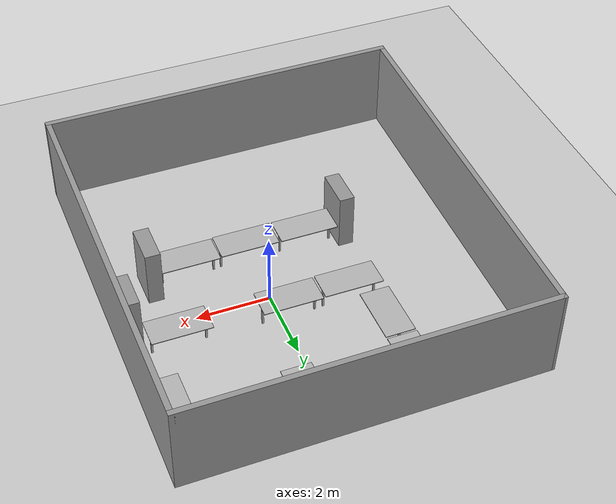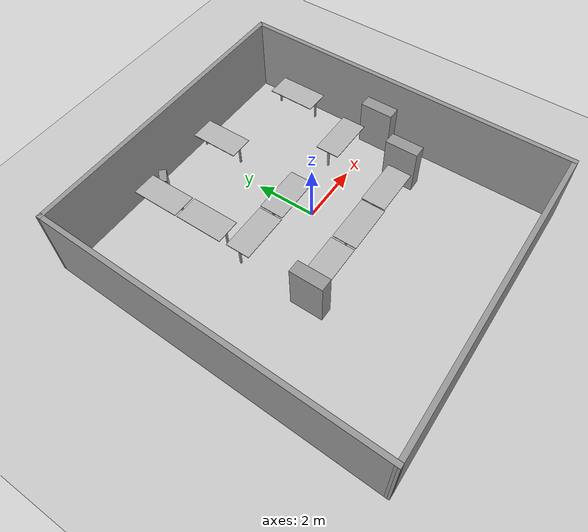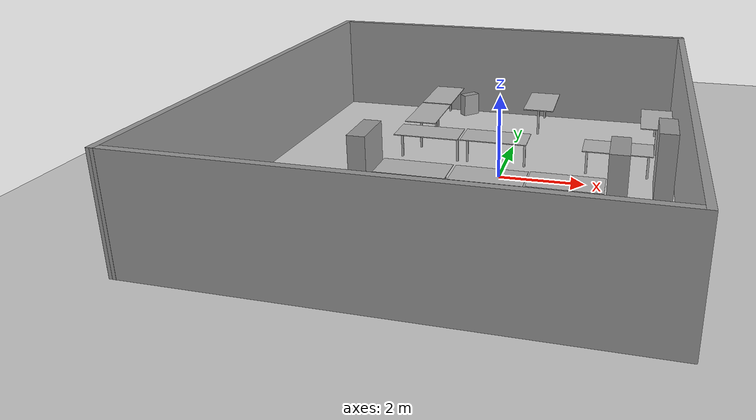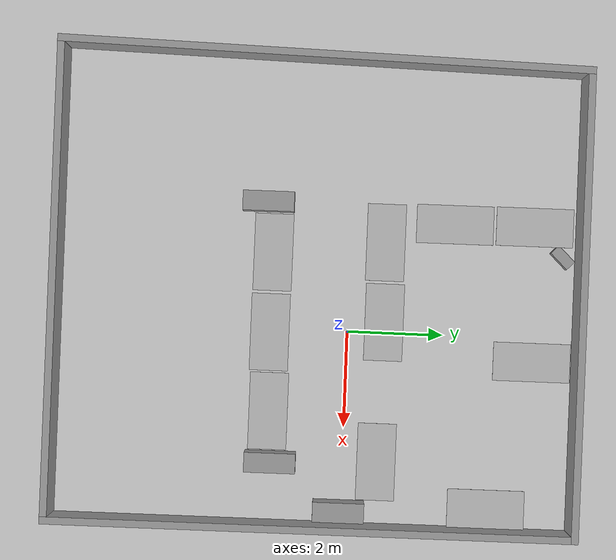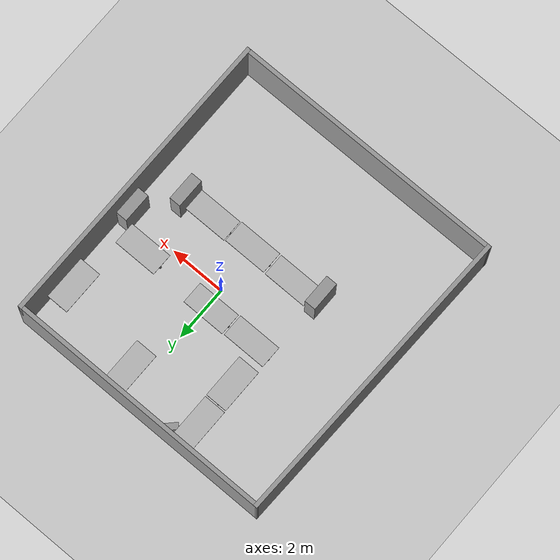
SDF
<sdf version="1.6">
 <world name="default">
  <light name="sun" type="directional">
   <pose>0 0 10 0 -0 0</pose>
   <diffuse>0.45 0.45 0.45 1</diffuse>
   <specular>0.2 0.2 0.2 1</specular>
   <attenuation>
    <range>1000</range>
    <constant>0.9</constant>
    <linear>0.01</linear>
    <quadratic>0.001</quadratic>
   </attenuation>
   <direction>0.1 0.1 -0.9</direction>
  </light>
  <model name="ground_plane">
   <static>1</static>
   <link name="link">
    <collision name="collision">
     <geometry><plane><normal>0 0 1</normal><size>100 100</size></plane></geometry>
     <surface><friction><ode><mu>100</mu><mu2>50</mu2></ode></friction></surface>
    </collision>
    <visual name="visual">
     <cast_shadows>0</cast_shadows>
     <geometry><plane><normal>0 0 1</normal><size>100 100</size></plane></geometry>
     <material>
      <script><uri>file://media/materials/scripts/gazebo.material</uri><name>Gazebo/Grey</name></script>
     </material>
    </visual>
   </link>
  </model>
  <gravity>0 0 -9.8</gravity>
  <magnetic_field>6e-06 2.3e-05 -4.2e-05</magnetic_field>
  <atmosphere type="adiabatic"/>
  <physics name="default_physics" default="0" type="ode">
   <max_step_size>0.001</max_step_size>
   <real_time_factor>1</real_time_factor>
   <real_time_update_rate>1000</real_time_update_rate>
  </physics>
  <scene><ambient>0.4 0.4 0.4 1</ambient><background>0.7 0.7 0.7 1</background><shadows>1</shadows></scene>
  <spherical_coordinates>
   <surface_model>EARTH_WGS84</surface_model>
   <latitude_deg>0</latitude_deg>
   <longitude_deg>0</longitude_deg>
   <elevation>0</elevation>
   <heading_deg>0</heading_deg>
  </spherical_coordinates>
  <model name="small_room">
   <pose>-0.86468 -0.641226 0 0 -0 0</pose>
   <link name="Wall_10">
    <collision name="Wall_10_Collision">
     <geometry><box><size>11.0029 0.15 2.5</size></box></geometry>
     <pose>0 0 1.25 0 -0 0</pose>
    </collision>
    <visual name="Wall_10_Visual">
     <pose>0 0 1.25 0 -0 0</pose>
     <geometry><box><size>11.0029 0.15 2.5</size></box></geometry>
     <material>
      <script><uri>file://media/materials/scripts/gazebo.material</uri><name>Gazebo/Grey</name></script>
      <ambient>1 1 1 1</ambient>
     </material>
     <meta><layer>0</layer></meta>
    </visual>
    <pose>-4.79915 0 0 0 0 -1.59383</pose>
   </link>
   <link name="Wall_6">
    <collision name="Wall_6_Collision">
     <geometry><box><size>9.75 0.15 2.5</size></box></geometry>
     <pose>0 0 1.25 0 -0 0</pose>
    </collision>
    <visual name="Wall_6_Visual">
     <pose>0 0 1.25 0 -0 0</pose>
     <geometry><box><size>9.75 0.15 2.5</size></box></geometry>
     <material>
      <script><uri>file://media/materials/scripts/gazebo.material</uri><name>Gazebo/Grey</name></script>
      <ambient>1 1 1 1</ambient>
     </material>
     <meta><layer>0</layer></meta>
    </visual>
    <pose>0.125853 5.425 0 0 -0 0</pose>
   </link>
   <link name="Wall_7">
    <collision name="Wall_7_Collision">
     <geometry><box><size>11 0.15 2.5</size></box></geometry>
     <pose>0 0 1.25 0 -0 0</pose>
    </collision>
    <visual name="Wall_7_Visual">
     <pose>0 0 1.25 0 -0 0</pose>
     <geometry><box><size>11 0.15 2.5</size></box></geometry>
     <material>
      <script><uri>file://media/materials/scripts/gazebo.material</uri><name>Gazebo/Grey</name></script>
      <ambient>1 1 1 1</ambient>
     </material>
     <meta><layer>0</layer></meta>
    </visual>
    <pose>4.92585 0 0 0 0 -1.5708</pose>
   </link>
   <link name="Wall_8">
    <collision name="Wall_8_Collision">
     <geometry><box><size>10 0.15 2.5</size></box></geometry>
     <pose>0 0 1.25 0 -0 0</pose>
    </collision>
    <visual name="Wall_8_Visual">
     <pose>0 0 1.25 0 -0 0</pose>
     <geometry><box><size>10 0.15 2.5</size></box></geometry>
     <material>
      <script><uri>file://media/materials/scripts/gazebo.material</uri><name>Gazebo/Grey</name></script>
      <ambient>1 1 1 1</ambient>
     </material>
     <meta><layer>0</layer></meta>
    </visual>
    <pose>0.000853 -5.425 0 0 -0 3.14159</pose>
   </link>
   <static>1</static>
  </model>
  <model name="table">
   <static>1</static>
   <link name="surface">
    <pose>0 0 0.7 0 -0 0</pose>
    <inertial>
     <mass>1</mass>
     <inertia><ixx>0.083</ixx><ixy>0</ixy><ixz>0</ixz><iyy>0.083</iyy><iyz>0</iyz><izz>0.083</izz></inertia>
    </inertial>
    <collision name="collision"><geometry><box><size>0.8 1.6 0.02</size></box></geometry></collision>
    <visual name="visual"><geometry><box><size>0.8 1.6 0.02</size></box></geometry></visual>
   </link>
   <link name="leg1">
    <pose>0 0.71 0.35 0 -0 0</pose>
    <inertial>
     <mass>1</mass>
     <inertia><ixx>0.083</ixx><ixy>0</ixy><ixz>0</ixz><iyy>0.083</iyy><iyz>0</iyz><izz>0.083</izz></inertia>
    </inertial>
    <collision name="collision"><geometry><box><size>0.05 0.05 0.7</size></box></geometry></collision>
    <visual name="visual"><geometry><box><size>0.05 0.05 0.7</size></box></geometry></visual>
   </link>
   <link name="leg2">
    <pose>0 -0.71 0.35 0 -0 0</pose>
    <inertial>
     <mass>1</mass>
     <inertia><ixx>0.083</ixx><ixy>0</ixy><ixz>0</ixz><iyy>0.083</iyy><iyz>0</iyz><izz>0.083</izz></inertia>
    </inertial>
    <collision name="collision"><geometry><box><size>0.05 0.05 0.7</size></box></geometry></collision>
    <visual name="visual"><geometry><box><size>0.05 0.05 0.7</size></box></geometry></visual>
   </link>
   <pose>3.5728 3.01037 0 0 -0 0</pose>
  </model>
  <model name="table_clone">
   <static>1</static>
   <link name="surface">
    <pose>0 0 0.7 0 -0 0</pose>
    <inertial>
     <mass>1</mass>
     <inertia><ixx>0.083</ixx><ixy>0</ixy><ixz>0</ixz><iyy>0.083</iyy><iyz>0</iyz><izz>0.083</izz></inertia>
    </inertial>
    <collision name="collision"><geometry><box><size>0.8 1.6 0.02</size></box></geometry></collision>
    <visual name="visual"><geometry><box><size>0.8 1.6 0.02</size></box></geometry></visual>
   </link>
   <link name="leg1">
    <pose>0 0.71 0.35 0 -0 0</pose>
    <inertial>
     <mass>1</mass>
     <inertia><ixx>0.083</ixx><ixy>0</ixy><ixz>0</ixz><iyy>0.083</iyy><iyz>0</iyz><izz>0.083</izz></inertia>
    </inertial>
    <collision name="collision"><geometry><box><size>0.05 0.05 0.7</size></box></geometry></collision>
    <visual name="visual"><geometry><box><size>0.05 0.05 0.7</size></box></geometry></visual>
   </link>
   <link name="leg2">
    <pose>0 -0.71 0.35 0 -0 0</pose>
    <inertial>
     <mass>1</mass>
     <inertia><ixx>0.083</ixx><ixy>0</ixy><ixz>0</ixz><iyy>0.083</iyy><iyz>0</iyz><izz>0.083</izz></inertia>
    </inertial>
    <collision name="collision"><geometry><box><size>0.05 0.05 0.7</size></box></geometry></collision>
    <visual name="visual"><geometry><box><size>0.05 0.05 0.7</size></box></geometry></visual>
   </link>
   <pose>0.487267 3.85123 0 0 -0 0</pose>
  </model>
  <model name="table_clone_clone">
   <static>1</static>
   <link name="surface">
    <pose>0 0 0.7 0 -0 0</pose>
    <inertial>
     <mass>1</mass>
     <inertia><ixx>0.083</ixx><ixy>0</ixy><ixz>0</ixz><iyy>0.083</iyy><iyz>0</iyz><izz>0.083</izz></inertia>
    </inertial>
    <collision name="collision"><geometry><box><size>0.8 1.6 0.02</size></box></geometry></collision>
    <visual name="visual"><geometry><box><size>0.8 1.6 0.02</size></box></geometry></visual>
   </link>
   <link name="leg1">
    <pose>0 0.71 0.35 0 -0 0</pose>
    <inertial>
     <mass>1</mass>
     <inertia><ixx>0.083</ixx><ixy>0</ixy><ixz>0</ixz><iyy>0.083</iyy><iyz>0</iyz><izz>0.083</izz></inertia>
    </inertial>
    <collision name="collision"><geometry><box><size>0.05 0.05 0.7</size></box></geometry></collision>
    <visual name="visual"><geometry><box><size>0.05 0.05 0.7</size></box></geometry></visual>
   </link>
   <link name="leg2">
    <pose>0 -0.71 0.35 0 -0 0</pose>
    <inertial>
     <mass>1</mass>
     <inertia><ixx>0.083</ixx><ixy>0</ixy><ixz>0</ixz><iyy>0.083</iyy><iyz>0</iyz><izz>0.083</izz></inertia>
    </inertial>
    <collision name="collision"><geometry><box><size>0.05 0.05 0.7</size></box></geometry></collision>
    <visual name="visual"><geometry><box><size>0.05 0.05 0.7</size></box></geometry></visual>
   </link>
   <pose>-2.32045 3.81657 0 0 -0 0</pose>
  </model>
  <model name="table_clone_clone_clone">
   <static>1</static>
   <link name="surface">
    <pose>0 0 0.7 0 -0 0</pose>
    <inertial>
     <mass>1</mass>
     <inertia><ixx>0.083</ixx><ixy>0</ixy><ixz>0</ixz><iyy>0.083</iyy><iyz>0</iyz><izz>0.083</izz></inertia>
    </inertial>
    <collision name="collision"><geometry><box><size>0.8 1.6 0.02</size></box></geometry></collision>
    <visual name="visual"><geometry><box><size>0.8 1.6 0.02</size></box></geometry></visual>
   </link>
   <link name="leg1">
    <pose>0 0.71 0.35 0 -0 0</pose>
    <inertial>
     <mass>1</mass>
     <inertia><ixx>0.083</ixx><ixy>0</ixy><ixz>0</ixz><iyy>0.083</iyy><iyz>0</iyz><izz>0.083</izz></inertia>
    </inertial>
    <collision name="collision"><geometry><box><size>0.05 0.05 0.7</size></box></geometry></collision>
    <visual name="visual"><geometry><box><size>0.05 0.05 0.7</size></box></geometry></visual>
   </link>
   <link name="leg2">
    <pose>0 -0.71 0.35 0 -0 0</pose>
    <inertial>
     <mass>1</mass>
     <inertia><ixx>0.083</ixx><ixy>0</ixy><ixz>0</ixz><iyy>0.083</iyy><iyz>0</iyz><izz>0.083</izz></inertia>
    </inertial>
    <collision name="collision"><geometry><box><size>0.05 0.05 0.7</size></box></geometry></collision>
    <visual name="visual"><geometry><box><size>0.05 0.05 0.7</size></box></geometry></visual>
   </link>
   <pose>-2.31352 2.15773 0 0 -0 0</pose>
  </model>
  <model name="table_clone_clone_clone_clone">
   <static>1</static>
   <link name="surface">
    <pose>0 0 0.7 0 -0 0</pose>
    <inertial>
     <mass>1</mass>
     <inertia><ixx>0.083</ixx><ixy>0</ixy><ixz>0</ixz><iyy>0.083</iyy><iyz>0</iyz><izz>0.083</izz></inertia>
    </inertial>
    <collision name="collision"><geometry><box><size>0.8 1.6 0.02</size></box></geometry></collision>
    <visual name="visual"><geometry><box><size>0.8 1.6 0.02</size></box></geometry></visual>
   </link>
   <link name="leg1">
    <pose>0 0.71 0.35 0 -0 0</pose>
    <inertial>
     <mass>1</mass>
     <inertia><ixx>0.083</ixx><ixy>0</ixy><ixz>0</ixz><iyy>0.083</iyy><iyz>0</iyz><izz>0.083</izz></inertia>
    </inertial>
    <collision name="collision"><geometry><box><size>0.05 0.05 0.7</size></box></geometry></collision>
    <visual name="visual"><geometry><box><size>0.05 0.05 0.7</size></box></geometry></visual>
   </link>
   <link name="leg2">
    <pose>0 -0.71 0.35 0 -0 0</pose>
    <inertial>
     <mass>1</mass>
     <inertia><ixx>0.083</ixx><ixy>0</ixy><ixz>0</ixz><iyy>0.083</iyy><iyz>0</iyz><izz>0.083</izz></inertia>
    </inertial>
    <collision name="collision"><geometry><box><size>0.05 0.05 0.7</size></box></geometry></collision>
    <visual name="visual"><geometry><box><size>0.05 0.05 0.7</size></box></geometry></visual>
   </link>
   <pose>-1.88666 0.733523 0 0 0 -1.57247</pose>
  </model>
  <model name="table_clone_clone_clone_clone_clone">
   <static>1</static>
   <link name="surface">
    <pose>0 0 0.7 0 -0 0</pose>
    <inertial>
     <mass>1</mass>
     <inertia><ixx>0.083</ixx><ixy>0</ixy><ixz>0</ixz><iyy>0.083</iyy><iyz>0</iyz><izz>0.083</izz></inertia>
    </inertial>
    <collision name="collision"><geometry><box><size>0.8 1.6 0.02</size></box></geometry></collision>
    <visual name="visual"><geometry><box><size>0.8 1.6 0.02</size></box></geometry></visual>
   </link>
   <link name="leg1">
    <pose>0 0.71 0.35 0 -0 0</pose>
    <inertial>
     <mass>1</mass>
     <inertia><ixx>0.083</ixx><ixy>0</ixy><ixz>0</ixz><iyy>0.083</iyy><iyz>0</iyz><izz>0.083</izz></inertia>
    </inertial>
    <collision name="collision"><geometry><box><size>0.05 0.05 0.7</size></box></geometry></collision>
    <visual name="visual"><geometry><box><size>0.05 0.05 0.7</size></box></geometry></visual>
   </link>
   <link name="leg2">
    <pose>0 -0.71 0.35 0 -0 0</pose>
    <inertial>
     <mass>1</mass>
     <inertia><ixx>0.083</ixx><ixy>0</ixy><ixz>0</ixz><iyy>0.083</iyy><iyz>0</iyz><izz>0.083</izz></inertia>
    </inertial>
    <collision name="collision"><geometry><box><size>0.05 0.05 0.7</size></box></geometry></collision>
    <visual name="visual"><geometry><box><size>0.05 0.05 0.7</size></box></geometry></visual>
   </link>
   <pose>-0.22807 0.756859 0 0 0 -1.57247</pose>
  </model>
  <model name="table_clone_clone_clone_clone_clone_clone">
   <static>1</static>
   <link name="surface">
    <pose>0 0 0.7 0 -0 0</pose>
    <inertial>
     <mass>1</mass>
     <inertia><ixx>0.083</ixx><ixy>0</ixy><ixz>0</ixz><iyy>0.083</iyy><iyz>0</iyz><izz>0.083</izz></inertia>
    </inertial>
    <collision name="collision"><geometry><box><size>0.8 1.6 0.02</size></box></geometry></collision>
    <visual name="visual"><geometry><box><size>0.8 1.6 0.02</size></box></geometry></visual>
   </link>
   <link name="leg1">
    <pose>0 0.71 0.35 0 -0 0</pose>
    <inertial>
     <mass>1</mass>
     <inertia><ixx>0.083</ixx><ixy>0</ixy><ixz>0</ixz><iyy>0.083</iyy><iyz>0</iyz><izz>0.083</izz></inertia>
    </inertial>
    <collision name="collision"><geometry><box><size>0.05 0.05 0.7</size></box></geometry></collision>
    <visual name="visual"><geometry><box><size>0.05 0.05 0.7</size></box></geometry></visual>
   </link>
   <link name="leg2">
    <pose>0 -0.71 0.35 0 -0 0</pose>
    <inertial>
     <mass>1</mass>
     <inertia><ixx>0.083</ixx><ixy>0</ixy><ixz>0</ixz><iyy>0.083</iyy><iyz>0</iyz><izz>0.083</izz></inertia>
    </inertial>
    <collision name="collision"><geometry><box><size>0.05 0.05 0.7</size></box></geometry></collision>
    <visual name="visual"><geometry><box><size>0.05 0.05 0.7</size></box></geometry></visual>
   </link>
   <pose>2.67799 0.698879 0 0 0 -1.57247</pose>
  </model>
  <model name="unit_box">
   <pose>-1.71425 4.42855 0.300569 0 0 -0.777128</pose>
   <link name="link">
    <inertial>
     <mass>1</mass>
     <inertia>
      <ixx>0.166667</ixx>
      <ixy>0</ixy>
      <ixz>0</ixz>
      <iyy>0.166667</iyy>
      <iyz>0</iyz>
      <izz>0.166667</izz>
     </inertia>
    </inertial>
    <collision name="collision">
     <geometry><box><size>0.235203 0.476271 0.601139</size></box></geometry>
    </collision>
    <visual name="visual">
     <geometry><box><size>0.235203 0.476271 0.601139</size></box></geometry>
     <material>
      <script><name>Gazebo/Grey</name><uri>file://media/materials/scripts/gazebo.material</uri></script>
     </material>
    </visual>
   </link>
  </model>
  <model name="unit_box_0">
   <pose>3.72655 -0.053382 0.79696 0 -0 0.000214</pose>
   <link name="link">
    <inertial>
     <mass>1</mass>
     <inertia>
      <ixx>0.166667</ixx>
      <ixy>0</ixy>
      <ixz>0</ixz>
      <iyy>0.166667</iyy>
      <iyz>0</iyz>
      <izz>0.166667</izz>
     </inertia>
    </inertial>
    <collision name="collision"><geometry><box><size>0.40926 1.06262 1.59392</size></box></geometry></collision>
    <visual name="visual">
     <geometry><box><size>0.40926 1.06262 1.59392</size></box></geometry>
     <material>
      <script><name>Gazebo/Grey</name><uri>file://media/materials/scripts/gazebo.material</uri></script>
     </material>
    </visual>
   </link>
  </model>
  <model name="unit_box_0_clone">
   <pose>2.7535 -1.50449 0.796956 -6e-06 2e-06 0.000502</pose>
   <link name="link">
    <inertial>
     <mass>1</mass>
     <inertia>
      <ixx>0.166667</ixx>
      <ixy>0</ixy>
      <ixz>0</ixz>
      <iyy>0.166667</iyy>
      <iyz>0</iyz>
      <izz>0.166667</izz>
     </inertia>
    </inertial>
    <collision name="collision"><geometry><box><size>0.40926 1.06262 1.59392</size></box></geometry></collision>
    <visual name="visual">
     <geometry><box><size>0.40926 1.06262 1.59392</size></box></geometry>
     <material>
      <script><name>Gazebo/Grey</name><uri>file://media/materials/scripts/gazebo.material</uri></script>
     </material>
    </visual>
   </link>
  </model>
  <model name="table_clone_clone_clone_clone_clone_clone_0">
   <static>1</static>
   <link name="surface">
    <pose>0 0 0.7 0 -0 0</pose>
    <inertial>
     <mass>1</mass>
     <inertia><ixx>0.083</ixx><ixy>0</ixy><ixz>0</ixz><iyy>0.083</iyy><iyz>0</iyz><izz>0.083</izz></inertia>
    </inertial>
    <collision name="collision"><geometry><box><size>0.8 1.6 0.02</size></box></geometry></collision>
    <visual name="visual"><geometry><box><size>0.8 1.6 0.02</size></box></geometry></visual>
   </link>
   <link name="leg1">
    <pose>0 0.71 0.35 0 -0 0</pose>
    <inertial>
     <mass>1</mass>
     <inertia><ixx>0.083</ixx><ixy>0</ixy><ixz>0</ixz><iyy>0.083</iyy><iyz>0</iyz><izz>0.083</izz></inertia>
    </inertial>
    <collision name="collision"><geometry><box><size>0.05 0.05 0.7</size></box></geometry></collision>
    <visual name="visual"><geometry><box><size>0.05 0.05 0.7</size></box></geometry></visual>
   </link>
   <link name="leg2">
    <pose>0 -0.71 0.35 0 -0 0</pose>
    <inertial>
     <mass>1</mass>
     <inertia><ixx>0.083</ixx><ixy>0</ixy><ixz>0</ixz><iyy>0.083</iyy><iyz>0</iyz><izz>0.083</izz></inertia>
    </inertial>
    <collision name="collision"><geometry><box><size>0.05 0.05 0.7</size></box></geometry></collision>
    <visual name="visual"><geometry><box><size>0.05 0.05 0.7</size></box></geometry></visual>
   </link>
   <pose>1.70254 -1.58046 0 0 0 -1.57247</pose>
  </model>
  <model name="table_clone_clone_clone_clone_clone_clone_0_clone">
   <static>1</static>
   <link name="surface">
    <pose>0 0 0.7 0 -0 0</pose>
    <inertial>
     <mass>1</mass>
     <inertia><ixx>0.083</ixx><ixy>0</ixy><ixz>0</ixz><iyy>0.083</iyy><iyz>0</iyz><izz>0.083</izz></inertia>
    </inertial>
    <collision name="collision"><geometry><box><size>0.8 1.6 0.02</size></box></geometry></collision>
    <visual name="visual"><geometry><box><size>0.8 1.6 0.02</size></box></geometry></visual>
   </link>
   <link name="leg1">
    <pose>0 0.71 0.35 0 -0 0</pose>
    <inertial>
     <mass>1</mass>
     <inertia><ixx>0.083</ixx><ixy>0</ixy><ixz>0</ixz><iyy>0.083</iyy><iyz>0</iyz><izz>0.083</izz></inertia>
    </inertial>
    <collision name="collision"><geometry><box><size>0.05 0.05 0.7</size></box></geometry></collision>
    <visual name="visual"><geometry><box><size>0.05 0.05 0.7</size></box></geometry></visual>
   </link>
   <link name="leg2">
    <pose>0 -0.71 0.35 0 -0 0</pose>
    <inertial>
     <mass>1</mass>
     <inertia><ixx>0.083</ixx><ixy>0</ixy><ixz>0</ixz><iyy>0.083</iyy><iyz>0</iyz><izz>0.083</izz></inertia>
    </inertial>
    <collision name="collision"><geometry><box><size>0.05 0.05 0.7</size></box></geometry></collision>
    <visual name="visual"><geometry><box><size>0.05 0.05 0.7</size></box></geometry></visual>
   </link>
   <pose>0.063497 -1.60885 0 0 0 -1.57247</pose>
  </model>
  <model name="table_clone_clone_clone_clone_clone_clone_0_clone_clone">
   <static>1</static>
   <link name="surface">
    <pose>0 0 0.7 0 -0 0</pose>
    <inertial>
     <mass>1</mass>
     <inertia><ixx>0.083</ixx><ixy>0</ixy><ixz>0</ixz><iyy>0.083</iyy><iyz>0</iyz><izz>0.083</izz></inertia>
    </inertial>
    <collision name="collision"><geometry><box><size>0.8 1.6 0.02</size></box></geometry></collision>
    <visual name="visual"><geometry><box><size>0.8 1.6 0.02</size></box></geometry></visual>
   </link>
   <link name="leg1">
    <pose>0 0.71 0.35 0 -0 0</pose>
    <inertial>
     <mass>1</mass>
     <inertia><ixx>0.083</ixx><ixy>0</ixy><ixz>0</ixz><iyy>0.083</iyy><iyz>0</iyz><izz>0.083</izz></inertia>
    </inertial>
    <collision name="collision"><geometry><box><size>0.05 0.05 0.7</size></box></geometry></collision>
    <visual name="visual"><geometry><box><size>0.05 0.05 0.7</size></box></geometry></visual>
   </link>
   <link name="leg2">
    <pose>0 -0.71 0.35 0 -0 0</pose>
    <inertial>
     <mass>1</mass>
     <inertia><ixx>0.083</ixx><ixy>0</ixy><ixz>0</ixz><iyy>0.083</iyy><iyz>0</iyz><izz>0.083</izz></inertia>
    </inertial>
    <collision name="collision"><geometry><box><size>0.05 0.05 0.7</size></box></geometry></collision>
    <visual name="visual"><geometry><box><size>0.05 0.05 0.7</size></box></geometry></visual>
   </link>
   <pose>-1.59878 -1.5969 0 0 0 -1.57247</pose>
  </model>
  <model name="unit_box_0_clone_clone">
   <pose>-2.64475 -1.72697 0.79696 0 -0 0.000793</pose>
   <link name="link">
    <inertial>
     <mass>1</mass>
     <inertia>
      <ixx>0.166667</ixx>
      <ixy>0</ixy>
      <ixz>0</ixz>
      <iyy>0.166667</iyy>
      <iyz>0</iyz>
      <izz>0.166667</izz>
     </inertia>
    </inertial>
    <collision name="collision"><geometry><box><size>0.40926 1.06262 1.59392</size></box></geometry></collision>
    <visual name="visual">
     <geometry><box><size>0.40926 1.06262 1.59392</size></box></geometry>
     <material>
      <script><name>Gazebo/Grey</name><uri>file://media/materials/scripts/gazebo.material</uri></script>
     </material>
    </visual>
   </link>
  </model>
 </world>
</sdf>
